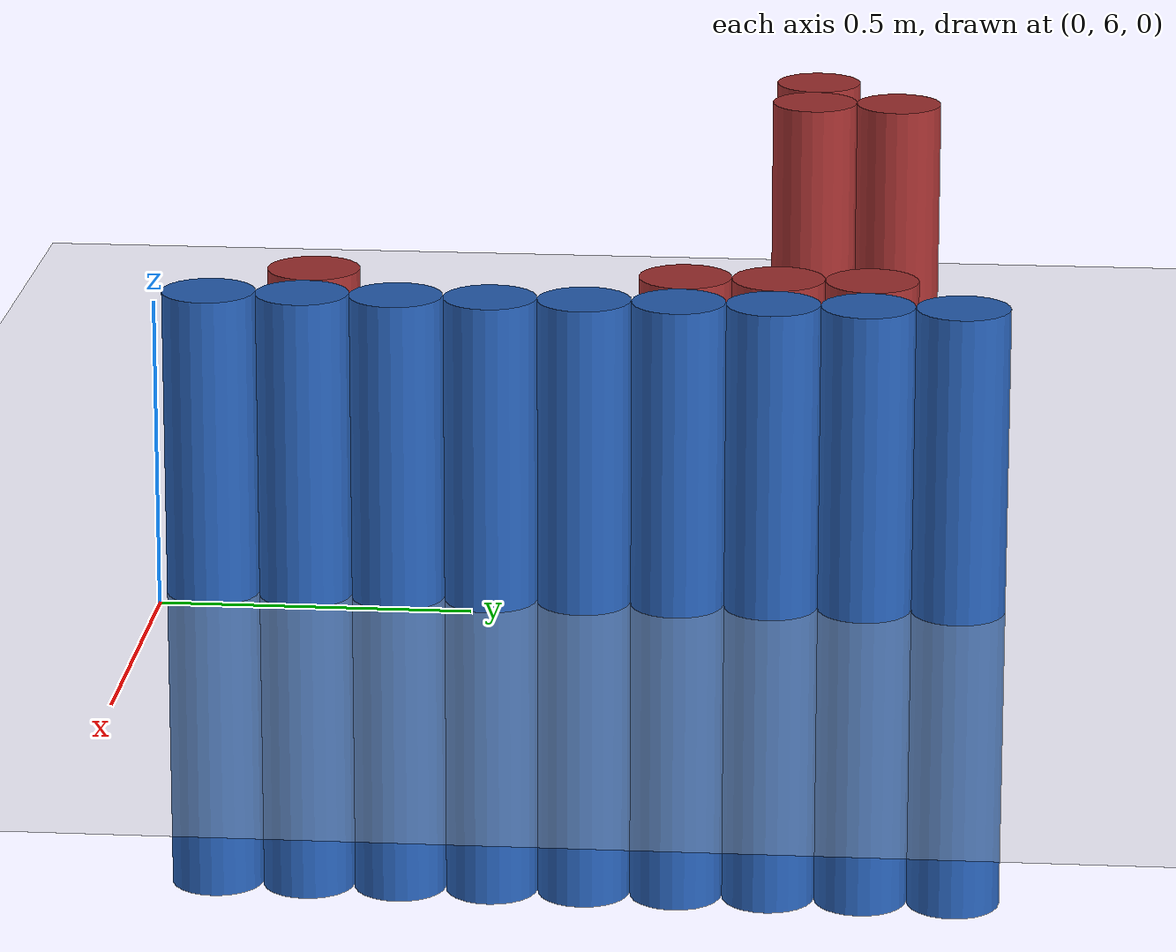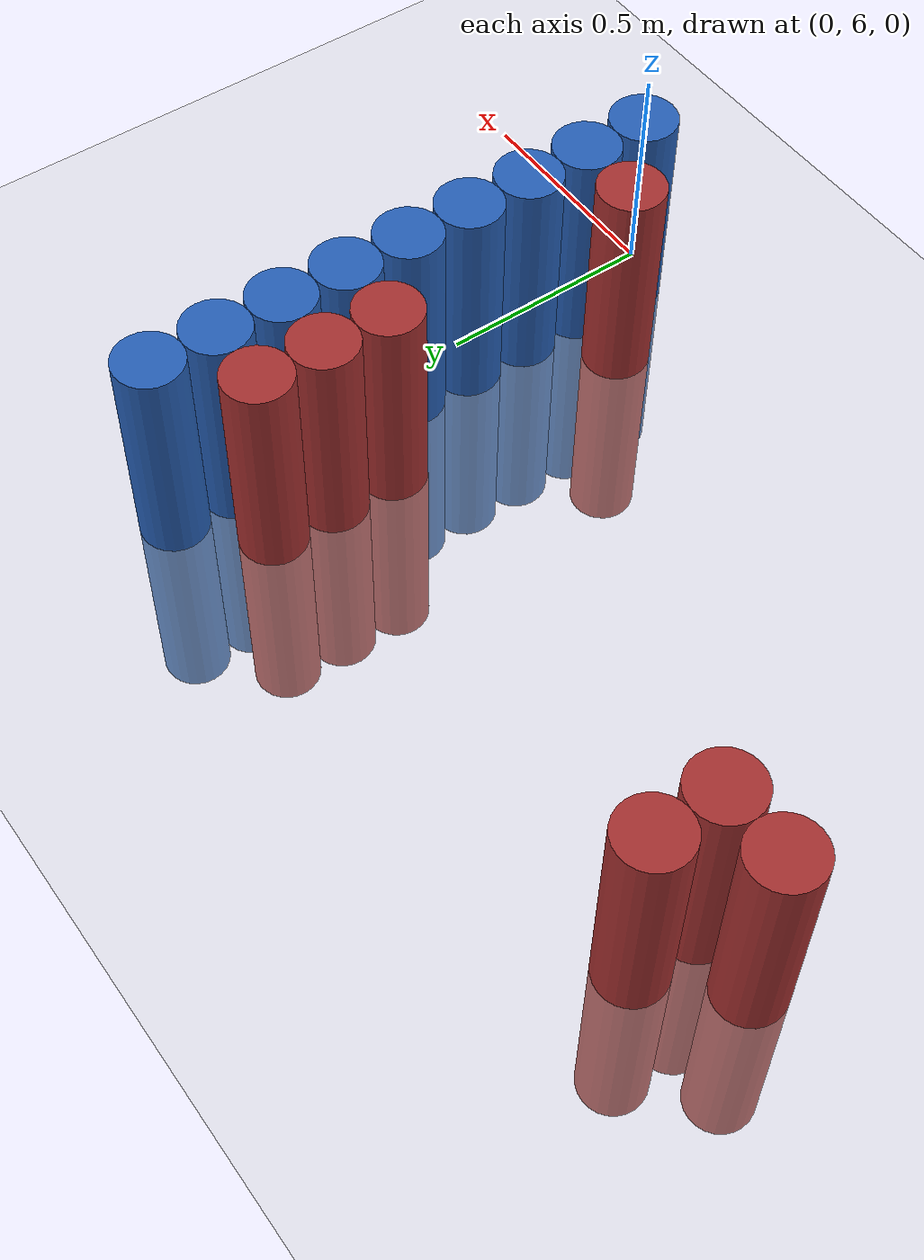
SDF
<sdf version="1.6">
 <world name="default">
  <model name="ground_plane">
   <static>1</static>
   <link name="link">
    <collision name="collision">
     <geometry><plane><normal>0 0 1</normal><size>100 100</size></plane></geometry>
     <surface><friction><ode><mu>100</mu><mu2>50</mu2></ode></friction></surface>
    </collision>
    <visual name="visual">
     <cast_shadows>0</cast_shadows>
     <geometry><plane><normal>0 0 1</normal><size>100 100</size></plane></geometry>
     <material>
      <script><uri>file://media/materials/scripts/gazebo.material</uri><name>Gazebo/Grey</name></script>
     </material>
    </visual>
   </link>
  </model>
  <model name="unit_cylinder_185">
   <static>1</static>
   <pose>-1.575000 6.975000 0.000000 0.000000 0.000000 0.000000</pose>
   <link name="link">
    <inertial>
     <mass>1</mass>
     <inertia><ixx>0.145833</ixx><ixy>0</ixy><ixz>0</ixz><iyy>0.145833</iyy><iyz>0</iyz><izz>0.125</izz></inertia>
    </inertial>
    <collision name="collision">
     <geometry><cylinder><radius>0.075000</radius><length>1</length></cylinder></geometry>
    </collision>
    <visual name="visual">
     <geometry><cylinder><radius>0.075000</radius><length>1</length></cylinder></geometry>
     <material>
      <ambient>0.648000 0.192000 0.192000 1</ambient>
      <diffuse>0.648000 0.192000 0.192000 1</diffuse>
     </material>
     <material>
      <script><name>Gazebo/Grey</name><uri>file://media/materials/scripts/gazebo.material</uri></script>
     </material>
    </visual>
   </link>
  </model>
  <model name="unit_cylinder_190">
   <static>1</static>
   <pose>-1.425000 6.975000 0.000000 0.000000 0.000000 0.000000</pose>
   <link name="link">
    <inertial>
     <mass>1</mass>
     <inertia><ixx>0.145833</ixx><ixy>0</ixy><ixz>0</ixz><iyy>0.145833</iyy><iyz>0</iyz><izz>0.125</izz></inertia>
    </inertial>
    <collision name="collision">
     <geometry><cylinder><radius>0.075000</radius><length>1</length></cylinder></geometry>
    </collision>
    <visual name="visual">
     <geometry><cylinder><radius>0.075000</radius><length>1</length></cylinder></geometry>
     <material>
      <ambient>0.648000 0.192000 0.192000 1</ambient>
      <diffuse>0.648000 0.192000 0.192000 1</diffuse>
     </material>
     <material>
      <script><name>Gazebo/Grey</name><uri>file://media/materials/scripts/gazebo.material</uri></script>
     </material>
    </visual>
   </link>
  </model>
  <model name="unit_cylinder_191">
   <static>1</static>
   <pose>-1.425000 7.125000 0.000000 0.000000 0.000000 0.000000</pose>
   <link name="link">
    <inertial>
     <mass>1</mass>
     <inertia><ixx>0.145833</ixx><ixy>0</ixy><ixz>0</ixz><iyy>0.145833</iyy><iyz>0</iyz><izz>0.125</izz></inertia>
    </inertial>
    <collision name="collision">
     <geometry><cylinder><radius>0.075000</radius><length>1</length></cylinder></geometry>
    </collision>
    <visual name="visual">
     <geometry><cylinder><radius>0.075000</radius><length>1</length></cylinder></geometry>
     <material>
      <ambient>0.648000 0.192000 0.192000 1</ambient>
      <diffuse>0.648000 0.192000 0.192000 1</diffuse>
     </material>
     <material>
      <script><name>Gazebo/Grey</name><uri>file://media/materials/scripts/gazebo.material</uri></script>
     </material>
    </visual>
   </link>
  </model>
  <model name="unit_cylinder_215">
   <static>1</static>
   <pose>-0.225000 6.225000 0.000000 0.000000 0.000000 0.000000</pose>
   <link name="link">
    <inertial>
     <mass>1</mass>
     <inertia><ixx>0.145833</ixx><ixy>0</ixy><ixz>0</ixz><iyy>0.145833</iyy><iyz>0</iyz><izz>0.125</izz></inertia>
    </inertial>
    <collision name="collision">
     <geometry><cylinder><radius>0.075000</radius><length>1</length></cylinder></geometry>
    </collision>
    <visual name="visual">
     <geometry><cylinder><radius>0.075000</radius><length>1</length></cylinder></geometry>
     <material>
      <ambient>0.648000 0.192000 0.192000 1</ambient>
      <diffuse>0.648000 0.192000 0.192000 1</diffuse>
     </material>
     <material>
      <script><name>Gazebo/Grey</name><uri>file://media/materials/scripts/gazebo.material</uri></script>
     </material>
    </visual>
   </link>
  </model>
  <model name="unit_cylinder_216">
   <static>1</static>
   <pose>-0.225000 6.825000 0.000000 0.000000 0.000000 0.000000</pose>
   <link name="link">
    <inertial>
     <mass>1</mass>
     <inertia><ixx>0.145833</ixx><ixy>0</ixy><ixz>0</ixz><iyy>0.145833</iyy><iyz>0</iyz><izz>0.125</izz></inertia>
    </inertial>
    <collision name="collision">
     <geometry><cylinder><radius>0.075000</radius><length>1</length></cylinder></geometry>
    </collision>
    <visual name="visual">
     <geometry><cylinder><radius>0.075000</radius><length>1</length></cylinder></geometry>
     <material>
      <ambient>0.648000 0.192000 0.192000 1</ambient>
      <diffuse>0.648000 0.192000 0.192000 1</diffuse>
     </material>
     <material>
      <script><name>Gazebo/Grey</name><uri>file://media/materials/scripts/gazebo.material</uri></script>
     </material>
    </visual>
   </link>
  </model>
  <model name="unit_cylinder_217">
   <static>1</static>
   <pose>-0.225000 6.975000 0.000000 0.000000 0.000000 0.000000</pose>
   <link name="link">
    <inertial>
     <mass>1</mass>
     <inertia><ixx>0.145833</ixx><ixy>0</ixy><ixz>0</ixz><iyy>0.145833</iyy><iyz>0</iyz><izz>0.125</izz></inertia>
    </inertial>
    <collision name="collision">
     <geometry><cylinder><radius>0.075000</radius><length>1</length></cylinder></geometry>
    </collision>
    <visual name="visual">
     <geometry><cylinder><radius>0.075000</radius><length>1</length></cylinder></geometry>
     <material>
      <ambient>0.648000 0.192000 0.192000 1</ambient>
      <diffuse>0.648000 0.192000 0.192000 1</diffuse>
     </material>
     <material>
      <script><name>Gazebo/Grey</name><uri>file://media/materials/scripts/gazebo.material</uri></script>
     </material>
    </visual>
   </link>
  </model>
  <model name="unit_cylinder_218">
   <static>1</static>
   <pose>-0.225000 7.125000 0.000000 0.000000 0.000000 0.000000</pose>
   <link name="link">
    <inertial>
     <mass>1</mass>
     <inertia><ixx>0.145833</ixx><ixy>0</ixy><ixz>0</ixz><iyy>0.145833</iyy><iyz>0</iyz><izz>0.125</izz></inertia>
    </inertial>
    <collision name="collision">
     <geometry><cylinder><radius>0.075000</radius><length>1</length></cylinder></geometry>
    </collision>
    <visual name="visual">
     <geometry><cylinder><radius>0.075000</radius><length>1</length></cylinder></geometry>
     <material>
      <ambient>0.648000 0.192000 0.192000 1</ambient>
      <diffuse>0.648000 0.192000 0.192000 1</diffuse>
     </material>
     <material>
      <script><name>Gazebo/Grey</name><uri>file://media/materials/scripts/gazebo.material</uri></script>
     </material>
    </visual>
   </link>
  </model>
  <model name="unit_cylinder_233">
   <static>1</static>
   <pose>-0.075000 6.075000 0.000000 0.000000 0.000000 0.000000</pose>
   <link name="link">
    <inertial>
     <mass>1</mass>
     <inertia><ixx>0.145833</ixx><ixy>0</ixy><ixz>0</ixz><iyy>0.145833</iyy><iyz>0</iyz><izz>0.125</izz></inertia>
    </inertial>
    <collision name="collision">
     <geometry><cylinder><radius>0.075000</radius><length>1</length></cylinder></geometry>
    </collision>
    <visual name="visual">
     <geometry><cylinder><radius>0.075000</radius><length>1</length></cylinder></geometry>
     <material>
      <ambient>0.152000 0.379000 0.720000 1</ambient>
      <diffuse>0.152000 0.379000 0.720000 1</diffuse>
     </material>
     <material>
      <script><name>Gazebo/Grey</name><uri>file://media/materials/scripts/gazebo.material</uri></script>
     </material>
    </visual>
   </link>
  </model>
  <model name="unit_cylinder_234">
   <static>1</static>
   <pose>-0.075000 6.225000 0.000000 0.000000 0.000000 0.000000</pose>
   <link name="link">
    <inertial>
     <mass>1</mass>
     <inertia><ixx>0.145833</ixx><ixy>0</ixy><ixz>0</ixz><iyy>0.145833</iyy><iyz>0</iyz><izz>0.125</izz></inertia>
    </inertial>
    <collision name="collision">
     <geometry><cylinder><radius>0.075000</radius><length>1</length></cylinder></geometry>
    </collision>
    <visual name="visual">
     <geometry><cylinder><radius>0.075000</radius><length>1</length></cylinder></geometry>
     <material>
      <ambient>0.152000 0.379000 0.720000 1</ambient>
      <diffuse>0.152000 0.379000 0.720000 1</diffuse>
     </material>
     <material>
      <script><name>Gazebo/Grey</name><uri>file://media/materials/scripts/gazebo.material</uri></script>
     </material>
    </visual>
   </link>
  </model>
  <model name="unit_cylinder_235">
   <static>1</static>
   <pose>-0.075000 6.375000 0.000000 0.000000 0.000000 0.000000</pose>
   <link name="link">
    <inertial>
     <mass>1</mass>
     <inertia><ixx>0.145833</ixx><ixy>0</ixy><ixz>0</ixz><iyy>0.145833</iyy><iyz>0</iyz><izz>0.125</izz></inertia>
    </inertial>
    <collision name="collision">
     <geometry><cylinder><radius>0.075000</radius><length>1</length></cylinder></geometry>
    </collision>
    <visual name="visual">
     <geometry><cylinder><radius>0.075000</radius><length>1</length></cylinder></geometry>
     <material>
      <ambient>0.152000 0.379000 0.720000 1</ambient>
      <diffuse>0.152000 0.379000 0.720000 1</diffuse>
     </material>
     <material>
      <script><name>Gazebo/Grey</name><uri>file://media/materials/scripts/gazebo.material</uri></script>
     </material>
    </visual>
   </link>
  </model>
  <model name="unit_cylinder_236">
   <static>1</static>
   <pose>-0.075000 6.525000 0.000000 0.000000 0.000000 0.000000</pose>
   <link name="link">
    <inertial>
     <mass>1</mass>
     <inertia><ixx>0.145833</ixx><ixy>0</ixy><ixz>0</ixz><iyy>0.145833</iyy><iyz>0</iyz><izz>0.125</izz></inertia>
    </inertial>
    <collision name="collision">
     <geometry><cylinder><radius>0.075000</radius><length>1</length></cylinder></geometry>
    </collision>
    <visual name="visual">
     <geometry><cylinder><radius>0.075000</radius><length>1</length></cylinder></geometry>
     <material>
      <ambient>0.152000 0.379000 0.720000 1</ambient>
      <diffuse>0.152000 0.379000 0.720000 1</diffuse>
     </material>
     <material>
      <script><name>Gazebo/Grey</name><uri>file://media/materials/scripts/gazebo.material</uri></script>
     </material>
    </visual>
   </link>
  </model>
  <model name="unit_cylinder_237">
   <static>1</static>
   <pose>-0.075000 6.675000 0.000000 0.000000 0.000000 0.000000</pose>
   <link name="link">
    <inertial>
     <mass>1</mass>
     <inertia><ixx>0.145833</ixx><ixy>0</ixy><ixz>0</ixz><iyy>0.145833</iyy><iyz>0</iyz><izz>0.125</izz></inertia>
    </inertial>
    <collision name="collision">
     <geometry><cylinder><radius>0.075000</radius><length>1</length></cylinder></geometry>
    </collision>
    <visual name="visual">
     <geometry><cylinder><radius>0.075000</radius><length>1</length></cylinder></geometry>
     <material>
      <ambient>0.152000 0.379000 0.720000 1</ambient>
      <diffuse>0.152000 0.379000 0.720000 1</diffuse>
     </material>
     <material>
      <script><name>Gazebo/Grey</name><uri>file://media/materials/scripts/gazebo.material</uri></script>
     </material>
    </visual>
   </link>
  </model>
  <model name="unit_cylinder_238">
   <static>1</static>
   <pose>-0.075000 6.825000 0.000000 0.000000 0.000000 0.000000</pose>
   <link name="link">
    <inertial>
     <mass>1</mass>
     <inertia><ixx>0.145833</ixx><ixy>0</ixy><ixz>0</ixz><iyy>0.145833</iyy><iyz>0</iyz><izz>0.125</izz></inertia>
    </inertial>
    <collision name="collision">
     <geometry><cylinder><radius>0.075000</radius><length>1</length></cylinder></geometry>
    </collision>
    <visual name="visual">
     <geometry><cylinder><radius>0.075000</radius><length>1</length></cylinder></geometry>
     <material>
      <ambient>0.152000 0.379000 0.720000 1</ambient>
      <diffuse>0.152000 0.379000 0.720000 1</diffuse>
     </material>
     <material>
      <script><name>Gazebo/Grey</name><uri>file://media/materials/scripts/gazebo.material</uri></script>
     </material>
    </visual>
   </link>
  </model>
  <model name="unit_cylinder_239">
   <static>1</static>
   <pose>-0.075000 6.975000 0.000000 0.000000 0.000000 0.000000</pose>
   <link name="link">
    <inertial>
     <mass>1</mass>
     <inertia><ixx>0.145833</ixx><ixy>0</ixy><ixz>0</ixz><iyy>0.145833</iyy><iyz>0</iyz><izz>0.125</izz></inertia>
    </inertial>
    <collision name="collision">
     <geometry><cylinder><radius>0.075000</radius><length>1</length></cylinder></geometry>
    </collision>
    <visual name="visual">
     <geometry><cylinder><radius>0.075000</radius><length>1</length></cylinder></geometry>
     <material>
      <ambient>0.152000 0.379000 0.720000 1</ambient>
      <diffuse>0.152000 0.379000 0.720000 1</diffuse>
     </material>
     <material>
      <script><name>Gazebo/Grey</name><uri>file://media/materials/scripts/gazebo.material</uri></script>
     </material>
    </visual>
   </link>
  </model>
  <model name="unit_cylinder_240">
   <static>1</static>
   <pose>-0.075000 7.125000 0.000000 0.000000 0.000000 0.000000</pose>
   <link name="link">
    <inertial>
     <mass>1</mass>
     <inertia><ixx>0.145833</ixx><ixy>0</ixy><ixz>0</ixz><iyy>0.145833</iyy><iyz>0</iyz><izz>0.125</izz></inertia>
    </inertial>
    <collision name="collision">
     <geometry><cylinder><radius>0.075000</radius><length>1</length></cylinder></geometry>
    </collision>
    <visual name="visual">
     <geometry><cylinder><radius>0.075000</radius><length>1</length></cylinder></geometry>
     <material>
      <ambient>0.152000 0.379000 0.720000 1</ambient>
      <diffuse>0.152000 0.379000 0.720000 1</diffuse>
     </material>
     <material>
      <script><name>Gazebo/Grey</name><uri>file://media/materials/scripts/gazebo.material</uri></script>
     </material>
    </visual>
   </link>
  </model>
  <model name="unit_cylinder_241">
   <static>1</static>
   <pose>-0.075000 7.275000 0.000000 0.000000 0.000000 0.000000</pose>
   <link name="link">
    <inertial>
     <mass>1</mass>
     <inertia><ixx>0.145833</ixx><ixy>0</ixy><ixz>0</ixz><iyy>0.145833</iyy><iyz>0</iyz><izz>0.125</izz></inertia>
    </inertial>
    <collision name="collision">
     <geometry><cylinder><radius>0.075000</radius><length>1</length></cylinder></geometry>
    </collision>
    <visual name="visual">
     <geometry><cylinder><radius>0.075000</radius><length>1</length></cylinder></geometry>
     <material>
      <ambient>0.152000 0.379000 0.720000 1</ambient>
      <diffuse>0.152000 0.379000 0.720000 1</diffuse>
     </material>
     <material>
      <script><name>Gazebo/Grey</name><uri>file://media/materials/scripts/gazebo.material</uri></script>
     </material>
    </visual>
   </link>
  </model>
 </world>
</sdf>
